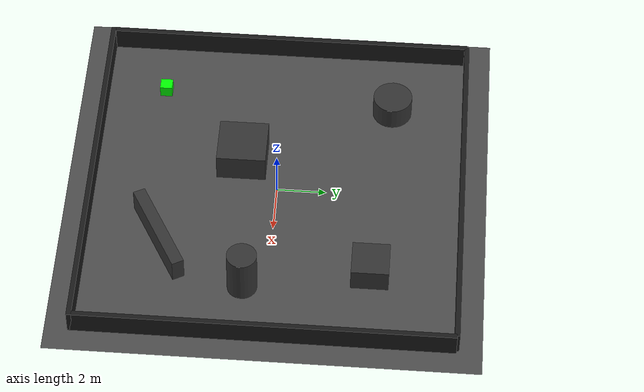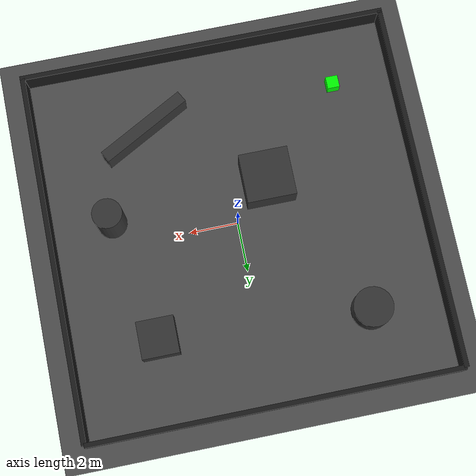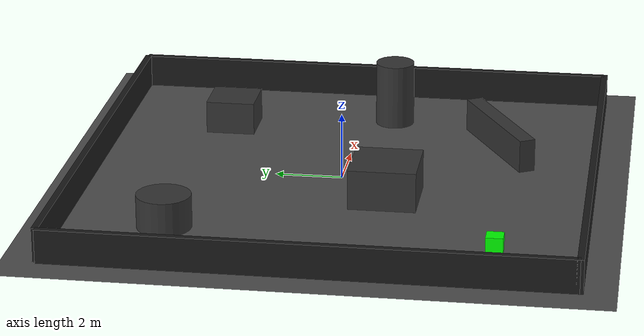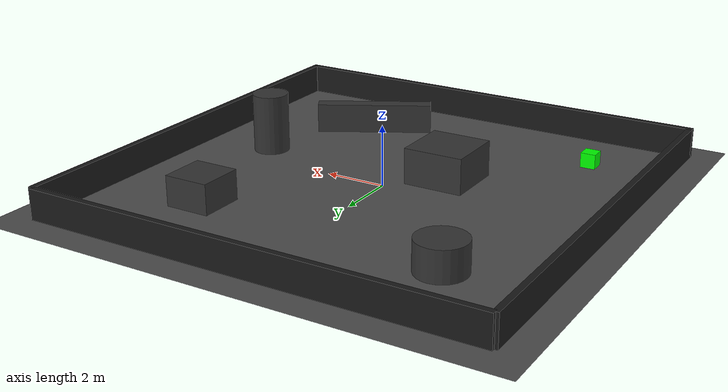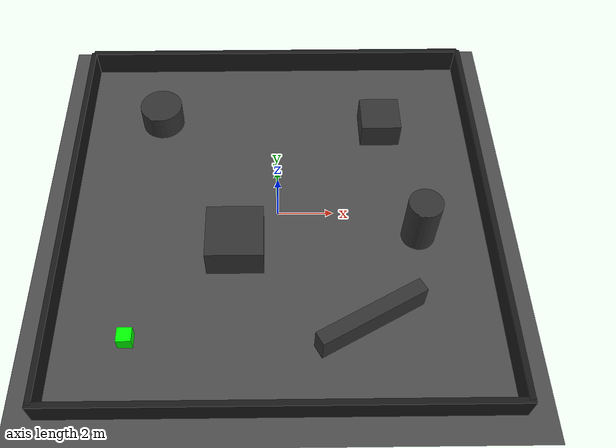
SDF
<?xml version="1.0" ?>
<sdf version="1.8">
  <world name="lunar_ants_world">

    <physics name='1ms' type='ignored'>
        <max_step_size>0.003</max_step_size>
        <real_time_factor>1</real_time_factor>
        <real_time_update_rate>1000</real_time_update_rate>
    </physics>

    <plugin filename="libignition-gazebo-physics-system.so" name="ignition::gazebo::systems::Physics"/>
    <plugin filename="libignition-gazebo-user-commands-system.so" name="ignition::gazebo::systems::UserCommands"/>
    <plugin filename="libignition-gazebo-scene-broadcaster-system.so" name="ignition::gazebo::systems::SceneBroadcaster"/>

    <light type="directional" name="sun">
      <cast_shadows>false</cast_shadows>
      <pose>0 0 10 0 0 0</pose>
      <diffuse>0.8 0.8 0.8 1</diffuse>
      <specular>0.2 0.2 0.2 1</specular>
      <attenuation>
        <range>1000</range>
        <constant>0.9</constant>
        <linear>0.01</linear>
        <quadratic>0.001</quadratic>
      </attenuation>
      <direction>-0.5 0.1 -0.9</direction>
    </light>

    <model name="lunar_surface">
      <static>true</static>
      <link name="link">
        <collision name="collision">
          <geometry><plane><normal>0 0 1</normal><size>30 30</size></plane></geometry>
        </collision>
        <visual name="visual">
          <geometry><plane><normal>0 0 1</normal><size>30 30</size></plane></geometry>
          <material>
            <ambient>0.3 0.3 0.3 1</ambient>
            <diffuse>0.3 0.3 0.3 1</diffuse>
            <specular>0.1 0.1 0.1 1</specular>
          </material>
        </visual>
      </link>
    </model>

    <model name="base_1">
      <pose>4.0 4.0 0.5 0 0 0</pose>
      <static>true</static>
      <link name="link">
        <collision name="collision"><geometry><box><size>1.5 1.5 1.0</size></box></geometry></collision>
        <visual name="visual">
          <geometry><box><size>1.5 1.5 1.0</size></box></geometry>
          <material><ambient>0.2 0.2 0.2 1</ambient><diffuse>0.2 0.2 0.2 1</diffuse></material>
        </visual>
      </link>
    </model>

    <model name="silo_2">
      <pose>-4.5 4.5 0.5 0 0 0</pose>
      <static>true</static>
      <link name="link">
        <collision name="collision"><geometry><cylinder><radius>0.8</radius><length>1.0</length></cylinder></geometry></collision>
        <visual name="visual">
          <geometry><cylinder><radius>0.8</radius><length>1.0</length></cylinder></geometry>
          <material><ambient>0.2 0.2 0.2 1</ambient><diffuse>0.2 0.2 0.2 1</diffuse></material>
        </visual>
      </link>
    </model>

    <model name="wall_3">
      <pose>3.0 -4.5 0.5 0 0 0.5</pose>
      <static>true</static>
      <link name="link">
        <collision name="collision"><geometry><box><size>4.0 0.5 1.0</size></box></geometry></collision>
        <visual name="visual">
          <geometry><box><size>4.0 0.5 1.0</size></box></geometry>
          <material><ambient>0.2 0.2 0.2 1</ambient><diffuse>0.2 0.2 0.2 1</diffuse></material>
        </visual>
      </link>
    </model>

    <model name="rock_4">
      <pose>-1.5 -1.5 0.6 0 0 0</pose>
      <static>true</static>
      <link name="link">
        <collision name="collision"><geometry><box><size>2.0 2.0 1.2</size></box></geometry></collision>
        <visual name="visual">
          <geometry><box><size>2.0 2.0 1.2</size></box></geometry>
          <material><ambient>0.2 0.2 0.2 1</ambient><diffuse>0.2 0.2 0.2 1</diffuse></material>
        </visual>
      </link>
    </model>

    <model name="pillar_5">
      <pose>5.0 -1.0 1.0 0 0 0</pose>
      <static>true</static>
      <link name="link">
        <collision name="collision"><geometry><cylinder><radius>0.6</radius><length>2.0</length></cylinder></geometry></collision>
        <visual name="visual">
          <geometry><cylinder><radius>0.6</radius><length>2.0</length></cylinder></geometry>
          <material><ambient>0.2 0.2 0.2 1</ambient><diffuse>0.2 0.2 0.2 1</diffuse></material>
        </visual>
      </link>
    </model>

    <model name="target_sample">
      <pose>-5.0 -5.0 0.25 0 0 0</pose>
      <static>true</static>
      <link name="link">
        <collision name="collision"><geometry><box><size>0.5 0.5 0.5</size></box></geometry></collision>
        <visual name="visual">
          <geometry><box><size>0.5 0.5 0.5</size></box></geometry>
          <material><ambient>0.0 1.0 0.0 1</ambient><diffuse>0.0 1.0 0.0 1</diffuse></material>
        </visual>
      </link>
    </model>

    <model name="wall_north">
      <pose>0 7.5 0.5 0 0 0</pose>
      <static>true</static>
      <link name="link">
        <collision name="collision"><geometry><box><size>15 0.2 1.0</size></box></geometry></collision>
        <visual name="visual">
          <geometry><box><size>15 0.2 1.0</size></box></geometry>
          <material><ambient>0.1 0.1 0.1 1</ambient><diffuse>0.1 0.1 0.1 1</diffuse></material>
        </visual>
      </link>
    </model>
    <model name="wall_south">
      <pose>0 -7.5 0.5 0 0 0</pose>
      <static>true</static>
      <link name="link">
        <collision name="collision"><geometry><box><size>15.2 0.2 1.0</size></box></geometry></collision>
        <visual name="visual">
          <geometry><box><size>15.2 0.2 1.0</size></box></geometry>
          <material><ambient>0.1 0.1 0.1 1</ambient><diffuse>0.1 0.1 0.1 1</diffuse></material>
        </visual>
      </link>
    </model>
    <model name="wall_east">
      <pose>7.5 0 0.5 0 0 0</pose>
      <static>true</static>
      <link name="link">
        <collision name="collision"><geometry><box><size>0.2 15 1.0</size></box></geometry></collision>
        <visual name="visual">
          <geometry><box><size>0.2 15 1.0</size></box></geometry>
          <material><ambient>0.1 0.1 0.1 1</ambient><diffuse>0.1 0.1 0.1 1</diffuse></material>
        </visual>
      </link>
    </model>
    <model name="wall_west">
      <pose>-7.5 0 0.5 0 0 0</pose>
      <static>true</static>
      <link name="link">
        <collision name="collision"><geometry><box><size>0.2 15 1.0</size></box></geometry></collision>
        <visual name="visual">
          <geometry><box><size>0.2 15 1.0</size></box></geometry>
          <material><ambient>0.1 0.1 0.1 1</ambient><diffuse>0.1 0.1 0.1 1</diffuse></material>
        </visual>
      </link>
    </model>

  </world>
</sdf>
